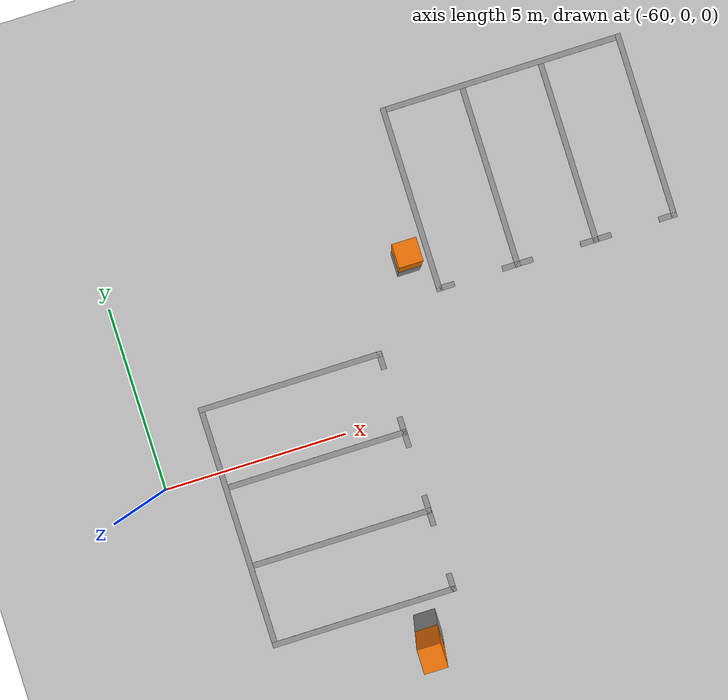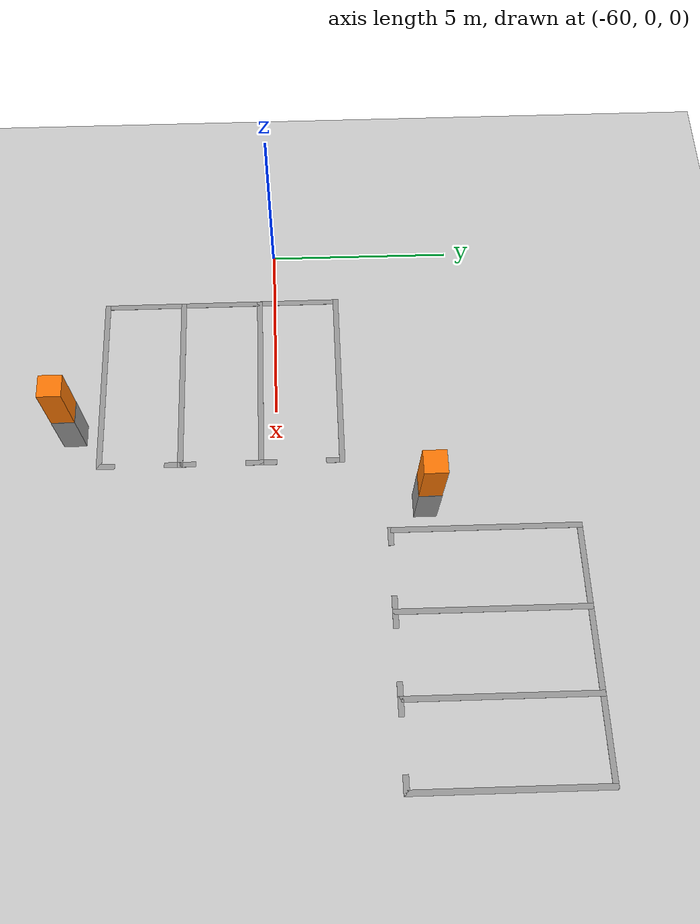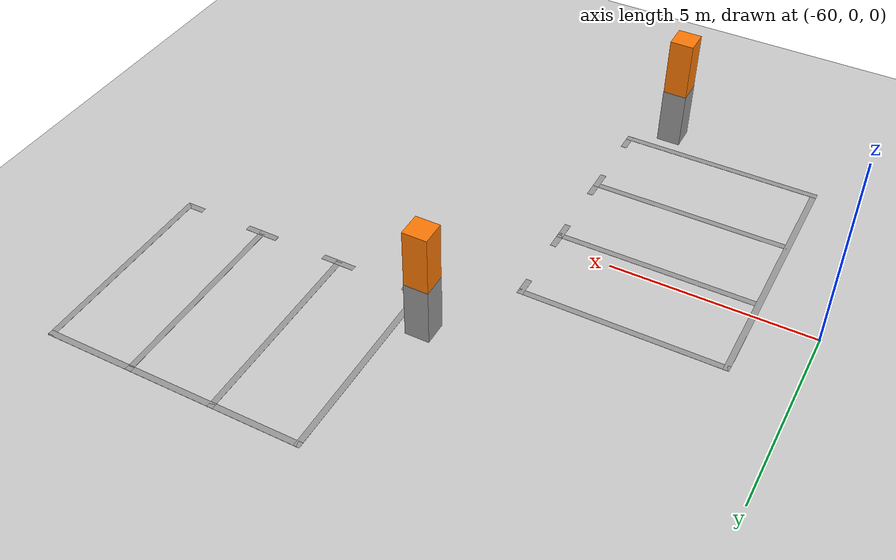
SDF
<sdf version="1.7">
 <world name="default">
  <model name="ground_plane">
   <static>1</static>
   <link name="link">
    <collision name="collision">
     <geometry><plane><normal>0 0 1</normal><size>100 100</size></plane></geometry>
     <surface><friction><ode><mu>100</mu><mu2>50</mu2></ode></friction></surface>
    </collision>
    <visual name="visual">
     <cast_shadows>0</cast_shadows>
     <geometry><plane><normal>0 0 1</normal><size>100 100</size></plane></geometry>
     <material>
      <script><uri>file://media/materials/scripts/gazebo.material</uri><name>Gazebo/Grey</name></script>
     </material>
    </visual>
   </link>
  </model>
  <model name="carport1_3_clone_clone_9_clone">
   <pose>-48.6736 7.14361 0 0 -0 0</pose>
   <link name="Wall_105">
    <collision name="Wall_105_Collision">
     <geometry><box><size>0.61 0.6 1.5</size></box></geometry>
     <pose>0 0 0.75 0 -0 0</pose>
    </collision>
    <visual name="Wall_105_Visual">
     <pose>0 0 0.75 0 -0 0</pose>
     <geometry><box><size>0.61 0.6 1.5</size></box></geometry>
     <material>
      <script><uri>file://media/materials/scripts/gazebo.material</uri><name>Gazebo/Grey</name></script>
      <ambient>1 1 1 1</ambient>
     </material>
     <meta><layer>0</layer></meta>
    </visual>
    <pose>-3.47407 -3.2865 0 0 -0 0</pose>
   </link>
   <link name="Wall_116">
    <collision name="Wall_116_Collision">
     <geometry><box><size>5.1 0.15 0.005</size></box></geometry>
     <pose>0 0 0.0025 0 -0 0</pose>
    </collision>
    <visual name="Wall_116_Visual">
     <pose>0 0 0.0025 0 -0 0</pose>
     <geometry><box><size>5.1 0.15 0.005</size></box></geometry>
     <material>
      <script><uri>file://media/materials/scripts/gazebo.material</uri><name>Gazebo/Grey</name></script>
      <ambient>1 1 1 1</ambient>
     </material>
     <meta><layer>0</layer></meta>
    </visual>
    <pose>-2.82307 -1.7385 0 0 -0 1.5708</pose>
   </link>
   <link name="Wall_124">
    <collision name="Wall_124_Collision">
     <geometry><box><size>5.1 0.15 0.005</size></box></geometry>
     <pose>0 0 0.0025 0 -0 0</pose>
    </collision>
    <visual name="Wall_124_Visual">
     <pose>0 0 0.0025 0 -0 0</pose>
     <geometry><box><size>5.1 0.15 0.005</size></box></geometry>
     <material>
      <script><uri>file://media/materials/scripts/gazebo.material</uri><name>Gazebo/Grey</name></script>
      <ambient>1 1 1 1</ambient>
     </material>
     <meta><layer>0</layer></meta>
    </visual>
    <pose>3.70393 -1.7305 0 0 -0 1.5708</pose>
   </link>
   <link name="Wall_146">
    <collision name="Wall_146_Collision">
     <geometry><box><size>6.67711 0.15 0.005</size></box></geometry>
     <pose>0 0 0.0025 0 -0 0</pose>
    </collision>
    <visual name="Wall_146_Visual">
     <pose>0 0 0.0025 0 -0 0</pose>
     <geometry><box><size>6.67711 0.15 0.005</size></box></geometry>
     <material>
      <script><uri>file://media/materials/scripts/gazebo.material</uri><name>Gazebo/Grey</name></script>
      <ambient>1 1 1 1</ambient>
     </material>
     <meta><layer>0</layer></meta>
    </visual>
    <pose>0.440428 0.7405 0 0 -0 0.001226</pose>
   </link>
   <link name="Wall_168">
    <collision name="Wall_168_Collision">
     <geometry><box><size>5.1 0.15 0.005</size></box></geometry>
     <pose>0 0 0.0025 0 -0 0</pose>
    </collision>
    <visual name="Wall_168_Visual">
     <pose>0 0 0.0025 0 -0 0</pose>
     <geometry><box><size>5.1 0.15 0.005</size></box></geometry>
     <material>
      <script><uri>file://media/materials/scripts/gazebo.material</uri><name>Gazebo/Grey</name></script>
      <ambient>1 1 1 1</ambient>
     </material>
     <meta><layer>0</layer></meta>
    </visual>
    <pose>-0.64827 -1.73839 0 0 -0 1.57088</pose>
   </link>
   <link name="Wall_173">
    <collision name="Wall_173_Collision">
     <geometry><box><size>5.1 0.15 0.005</size></box></geometry>
     <pose>0 0 0.0025 0 -0 0</pose>
    </collision>
    <visual name="Wall_173_Visual">
     <pose>0 0 0.0025 0 -0 0</pose>
     <geometry><box><size>5.1 0.15 0.005</size></box></geometry>
     <material>
      <script><uri>file://media/materials/scripts/gazebo.material</uri><name>Gazebo/Grey</name></script>
      <ambient>1 1 1 1</ambient>
     </material>
     <meta><layer>0</layer></meta>
    </visual>
    <pose>1.52673 -1.73839 0 0 -0 1.57088</pose>
   </link>
   <link name="Wall_177">
    <collision name="Wall_177_Collision">
     <geometry><box><size>0.6 0.59 3</size></box></geometry>
     <pose>0 0 1.5 0 -0 0</pose>
    </collision>
    <visual name="Wall_177_Visual">
     <pose>0 0 1.5 0 -0 0</pose>
     <geometry><box><size>0.6 0.59 3</size></box></geometry>
     <material>
      <script><uri>file://media/materials/scripts/gazebo.material</uri><name>Gazebo/Grey</name></script>
      <ambient>0.996078 0.47451 0.0196078 1</ambient>
     </material>
     <meta><layer>0</layer></meta>
    </visual>
    <pose>-3.47407 -3.2865 0 0 -0 0</pose>
   </link>
   <link name="Wall_179">
    <collision name="Wall_179_Collision">
     <geometry><box><size>0.5 0.15 0.005</size></box></geometry>
     <pose>0 0 0.0025 0 -0 0</pose>
    </collision>
    <visual name="Wall_179_Visual">
     <pose>0 0 0.0025 0 -0 0</pose>
     <geometry><box><size>0.5 0.15 0.005</size></box></geometry>
     <material>
      <script><uri>file://media/materials/scripts/gazebo.material</uri><name>Gazebo/Grey</name></script>
      <ambient>1 1 1 1</ambient>
     </material>
     <meta><layer>0</layer></meta>
    </visual>
    <pose>-2.64807 -4.2135 0 0 -0 0</pose>
   </link>
   <link name="Wall_181">
    <collision name="Wall_181_Collision">
     <geometry><box><size>0.5 0.15 0.005</size></box></geometry>
     <pose>0 0 0.0025 0 -0 0</pose>
    </collision>
    <visual name="Wall_181_Visual">
     <pose>0 0 0.0025 0 -0 0</pose>
     <geometry><box><size>0.5 0.15 0.005</size></box></geometry>
     <material>
      <script><uri>file://media/materials/scripts/gazebo.material</uri><name>Gazebo/Grey</name></script>
      <ambient>1 1 1 1</ambient>
     </material>
     <meta><layer>0</layer></meta>
    </visual>
    <pose>-0.823072 -4.2135 0 0 -0 3.14159</pose>
   </link>
   <link name="Wall_183">
    <collision name="Wall_183_Collision">
     <geometry><box><size>0.5 0.15 0.005</size></box></geometry>
     <pose>0 0 0.0025 0 -0 0</pose>
    </collision>
    <visual name="Wall_183_Visual">
     <pose>0 0 0.0025 0 -0 0</pose>
     <geometry><box><size>0.5 0.15 0.005</size></box></geometry>
     <material>
      <script><uri>file://media/materials/scripts/gazebo.material</uri><name>Gazebo/Grey</name></script>
      <ambient>1 1 1 1</ambient>
     </material>
     <meta><layer>0</layer></meta>
    </visual>
    <pose>-0.473072 -4.2135 0 0 -0 0</pose>
   </link>
   <link name="Wall_185">
    <collision name="Wall_185_Collision">
     <geometry><box><size>0.5 0.15 0.005</size></box></geometry>
     <pose>0 0 0.0025 0 -0 0</pose>
    </collision>
    <visual name="Wall_185_Visual">
     <pose>0 0 0.0025 0 -0 0</pose>
     <geometry><box><size>0.5 0.15 0.005</size></box></geometry>
     <material>
      <script><uri>file://media/materials/scripts/gazebo.material</uri><name>Gazebo/Grey</name></script>
      <ambient>1 1 1 1</ambient>
     </material>
     <meta><layer>0</layer></meta>
    </visual>
    <pose>1.35193 -4.2135 0 0 -0 3.14159</pose>
   </link>
   <link name="Wall_187">
    <collision name="Wall_187_Collision">
     <geometry><box><size>0.5 0.15 0.005</size></box></geometry>
     <pose>0 0 0.0025 0 -0 0</pose>
    </collision>
    <visual name="Wall_187_Visual">
     <pose>0 0 0.0025 0 -0 0</pose>
     <geometry><box><size>0.5 0.15 0.005</size></box></geometry>
     <material>
      <script><uri>file://media/materials/scripts/gazebo.material</uri><name>Gazebo/Grey</name></script>
      <ambient>1 1 1 1</ambient>
     </material>
     <meta><layer>0</layer></meta>
    </visual>
    <pose>1.70193 -4.2135 0 0 -0 0</pose>
   </link>
   <link name="Wall_189">
    <collision name="Wall_189_Collision">
     <geometry><box><size>0.5 0.15 0.005</size></box></geometry>
     <pose>0 0 0.0025 0 -0 0</pose>
    </collision>
    <visual name="Wall_189_Visual">
     <pose>0 0 0.0025 0 -0 0</pose>
     <geometry><box><size>0.5 0.15 0.005</size></box></geometry>
     <material>
      <script><uri>file://media/materials/scripts/gazebo.material</uri><name>Gazebo/Grey</name></script>
      <ambient>1 1 1 1</ambient>
     </material>
     <meta><layer>0</layer></meta>
    </visual>
    <pose>3.52893 -4.2055 0 0 -0 3.14159</pose>
   </link>
   <static>1</static>
  </model>
  <model name="carport1_3_clone_clone_9_clone_0_clone_clone">
   <pose>-57.7279 -1.95926 0 0 -0 1.57184</pose>
   <link name="Wall_105">
    <collision name="Wall_105_Collision">
     <geometry><box><size>0.61 0.6 1.5</size></box></geometry>
     <pose>0 0 0.75 0 -0 0</pose>
    </collision>
    <visual name="Wall_105_Visual">
     <pose>0 0 0.75 0 -0 0</pose>
     <geometry><box><size>0.61 0.6 1.5</size></box></geometry>
     <material>
      <script><uri>file://media/materials/scripts/gazebo.material</uri><name>Gazebo/Grey</name></script>
      <ambient>1 1 1 1</ambient>
     </material>
     <meta><layer>0</layer></meta>
    </visual>
    <pose>-3.47407 -3.2865 0 0 -0 0</pose>
   </link>
   <link name="Wall_116">
    <collision name="Wall_116_Collision">
     <geometry><box><size>5.1 0.15 0.005</size></box></geometry>
     <pose>0 0 0.0025 0 -0 0</pose>
    </collision>
    <visual name="Wall_116_Visual">
     <pose>0 0 0.0025 0 -0 0</pose>
     <geometry><box><size>5.1 0.15 0.005</size></box></geometry>
     <material>
      <script><uri>file://media/materials/scripts/gazebo.material</uri><name>Gazebo/Grey</name></script>
      <ambient>1 1 1 1</ambient>
     </material>
     <meta><layer>0</layer></meta>
    </visual>
    <pose>-2.82307 -1.7385 0 0 -0 1.5708</pose>
   </link>
   <link name="Wall_124">
    <collision name="Wall_124_Collision">
     <geometry><box><size>5.1 0.15 0.005</size></box></geometry>
     <pose>0 0 0.0025 0 -0 0</pose>
    </collision>
    <visual name="Wall_124_Visual">
     <pose>0 0 0.0025 0 -0 0</pose>
     <geometry><box><size>5.1 0.15 0.005</size></box></geometry>
     <material>
      <script><uri>file://media/materials/scripts/gazebo.material</uri><name>Gazebo/Grey</name></script>
      <ambient>1 1 1 1</ambient>
     </material>
     <meta><layer>0</layer></meta>
    </visual>
    <pose>3.70393 -1.7305 0 0 -0 1.5708</pose>
   </link>
   <link name="Wall_146">
    <collision name="Wall_146_Collision">
     <geometry><box><size>6.67711 0.15 0.005</size></box></geometry>
     <pose>0 0 0.0025 0 -0 0</pose>
    </collision>
    <visual name="Wall_146_Visual">
     <pose>0 0 0.0025 0 -0 0</pose>
     <geometry><box><size>6.67711 0.15 0.005</size></box></geometry>
     <material>
      <script><uri>file://media/materials/scripts/gazebo.material</uri><name>Gazebo/Grey</name></script>
      <ambient>1 1 1 1</ambient>
     </material>
     <meta><layer>0</layer></meta>
    </visual>
    <pose>0.440428 0.7405 0 0 -0 0.001226</pose>
   </link>
   <link name="Wall_168">
    <collision name="Wall_168_Collision">
     <geometry><box><size>5.1 0.15 0.005</size></box></geometry>
     <pose>0 0 0.0025 0 -0 0</pose>
    </collision>
    <visual name="Wall_168_Visual">
     <pose>0 0 0.0025 0 -0 0</pose>
     <geometry><box><size>5.1 0.15 0.005</size></box></geometry>
     <material>
      <script><uri>file://media/materials/scripts/gazebo.material</uri><name>Gazebo/Grey</name></script>
      <ambient>1 1 1 1</ambient>
     </material>
     <meta><layer>0</layer></meta>
    </visual>
    <pose>-0.64827 -1.73839 0 0 -0 1.57088</pose>
   </link>
   <link name="Wall_173">
    <collision name="Wall_173_Collision">
     <geometry><box><size>5.1 0.15 0.005</size></box></geometry>
     <pose>0 0 0.0025 0 -0 0</pose>
    </collision>
    <visual name="Wall_173_Visual">
     <pose>0 0 0.0025 0 -0 0</pose>
     <geometry><box><size>5.1 0.15 0.005</size></box></geometry>
     <material>
      <script><uri>file://media/materials/scripts/gazebo.material</uri><name>Gazebo/Grey</name></script>
      <ambient>1 1 1 1</ambient>
     </material>
     <meta><layer>0</layer></meta>
    </visual>
    <pose>1.52673 -1.73839 0 0 -0 1.57088</pose>
   </link>
   <link name="Wall_177">
    <collision name="Wall_177_Collision">
     <geometry><box><size>0.6 0.59 3</size></box></geometry>
     <pose>0 0 1.5 0 -0 0</pose>
    </collision>
    <visual name="Wall_177_Visual">
     <pose>0 0 1.5 0 -0 0</pose>
     <geometry><box><size>0.6 0.59 3</size></box></geometry>
     <material>
      <script><uri>file://media/materials/scripts/gazebo.material</uri><name>Gazebo/Grey</name></script>
      <ambient>0.996078 0.47451 0.0196078 1</ambient>
     </material>
     <meta><layer>0</layer></meta>
    </visual>
    <pose>-3.47407 -3.2865 0 0 -0 0</pose>
   </link>
   <link name="Wall_179">
    <collision name="Wall_179_Collision">
     <geometry><box><size>0.5 0.15 0.005</size></box></geometry>
     <pose>0 0 0.0025 0 -0 0</pose>
    </collision>
    <visual name="Wall_179_Visual">
     <pose>0 0 0.0025 0 -0 0</pose>
     <geometry><box><size>0.5 0.15 0.005</size></box></geometry>
     <material>
      <script><uri>file://media/materials/scripts/gazebo.material</uri><name>Gazebo/Grey</name></script>
      <ambient>1 1 1 1</ambient>
     </material>
     <meta><layer>0</layer></meta>
    </visual>
    <pose>-2.64807 -4.2135 0 0 -0 0</pose>
   </link>
   <link name="Wall_181">
    <collision name="Wall_181_Collision">
     <geometry><box><size>0.5 0.15 0.005</size></box></geometry>
     <pose>0 0 0.0025 0 -0 0</pose>
    </collision>
    <visual name="Wall_181_Visual">
     <pose>0 0 0.0025 0 -0 0</pose>
     <geometry><box><size>0.5 0.15 0.005</size></box></geometry>
     <material>
      <script><uri>file://media/materials/scripts/gazebo.material</uri><name>Gazebo/Grey</name></script>
      <ambient>1 1 1 1</ambient>
     </material>
     <meta><layer>0</layer></meta>
    </visual>
    <pose>-0.823072 -4.2135 0 0 -0 3.14159</pose>
   </link>
   <link name="Wall_183">
    <collision name="Wall_183_Collision">
     <geometry><box><size>0.5 0.15 0.005</size></box></geometry>
     <pose>0 0 0.0025 0 -0 0</pose>
    </collision>
    <visual name="Wall_183_Visual">
     <pose>0 0 0.0025 0 -0 0</pose>
     <geometry><box><size>0.5 0.15 0.005</size></box></geometry>
     <material>
      <script><uri>file://media/materials/scripts/gazebo.material</uri><name>Gazebo/Grey</name></script>
      <ambient>1 1 1 1</ambient>
     </material>
     <meta><layer>0</layer></meta>
    </visual>
    <pose>-0.473072 -4.2135 0 0 -0 0</pose>
   </link>
   <link name="Wall_185">
    <collision name="Wall_185_Collision">
     <geometry><box><size>0.5 0.15 0.005</size></box></geometry>
     <pose>0 0 0.0025 0 -0 0</pose>
    </collision>
    <visual name="Wall_185_Visual">
     <pose>0 0 0.0025 0 -0 0</pose>
     <geometry><box><size>0.5 0.15 0.005</size></box></geometry>
     <material>
      <script><uri>file://media/materials/scripts/gazebo.material</uri><name>Gazebo/Grey</name></script>
      <ambient>1 1 1 1</ambient>
     </material>
     <meta><layer>0</layer></meta>
    </visual>
    <pose>1.35193 -4.2135 0 0 -0 3.14159</pose>
   </link>
   <link name="Wall_187">
    <collision name="Wall_187_Collision">
     <geometry><box><size>0.5 0.15 0.005</size></box></geometry>
     <pose>0 0 0.0025 0 -0 0</pose>
    </collision>
    <visual name="Wall_187_Visual">
     <pose>0 0 0.0025 0 -0 0</pose>
     <geometry><box><size>0.5 0.15 0.005</size></box></geometry>
     <material>
      <script><uri>file://media/materials/scripts/gazebo.material</uri><name>Gazebo/Grey</name></script>
      <ambient>1 1 1 1</ambient>
     </material>
     <meta><layer>0</layer></meta>
    </visual>
    <pose>1.70193 -4.2135 0 0 -0 0</pose>
   </link>
   <link name="Wall_189">
    <collision name="Wall_189_Collision">
     <geometry><box><size>0.5 0.15 0.005</size></box></geometry>
     <pose>0 0 0.0025 0 -0 0</pose>
    </collision>
    <visual name="Wall_189_Visual">
     <pose>0 0 0.0025 0 -0 0</pose>
     <geometry><box><size>0.5 0.15 0.005</size></box></geometry>
     <material>
      <script><uri>file://media/materials/scripts/gazebo.material</uri><name>Gazebo/Grey</name></script>
      <ambient>1 1 1 1</ambient>
     </material>
     <meta><layer>0</layer></meta>
    </visual>
    <pose>3.52893 -4.2055 0 0 -0 3.14159</pose>
   </link>
   <static>1</static>
  </model>
 </world>
</sdf>
